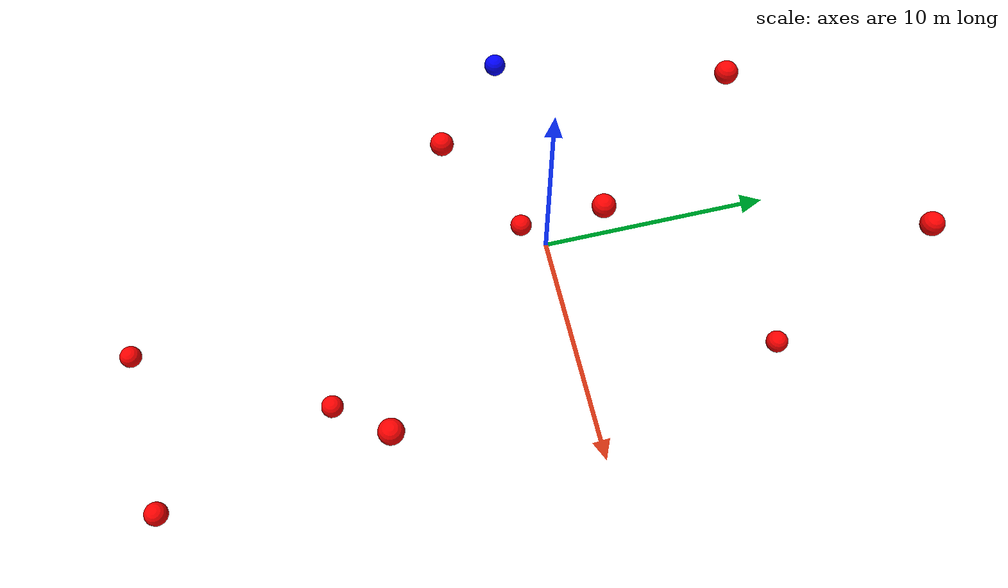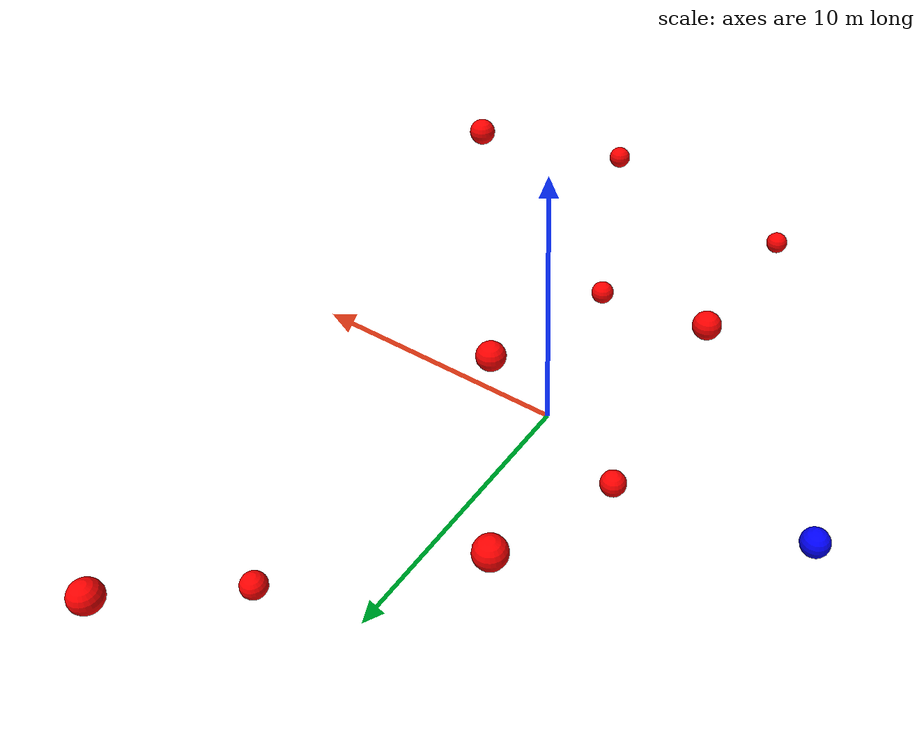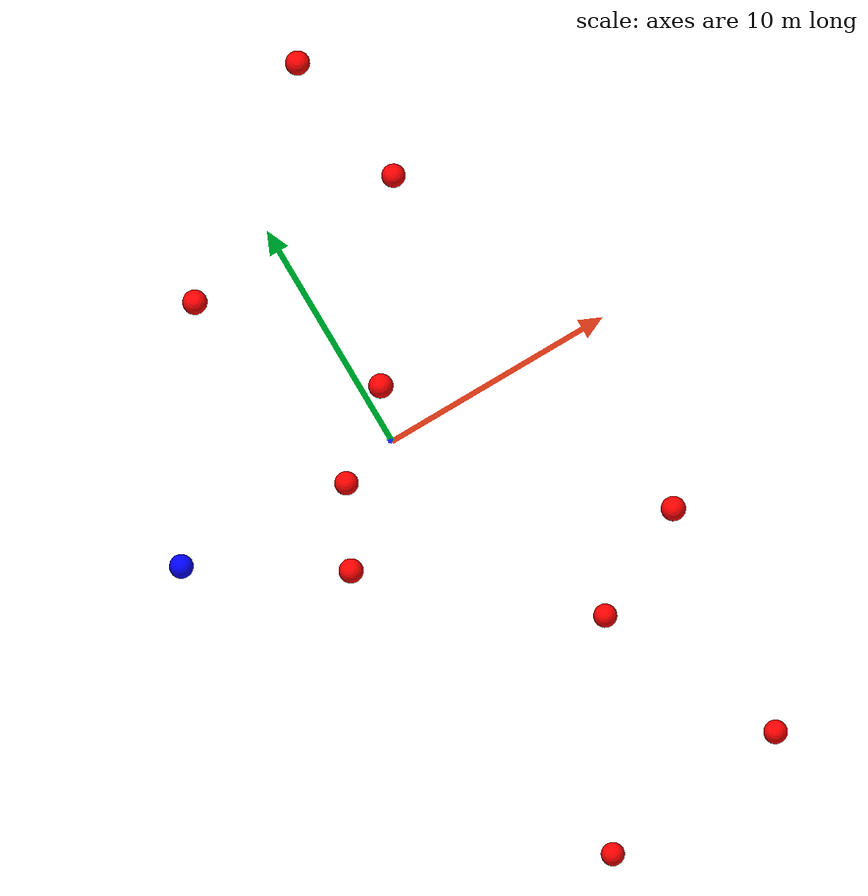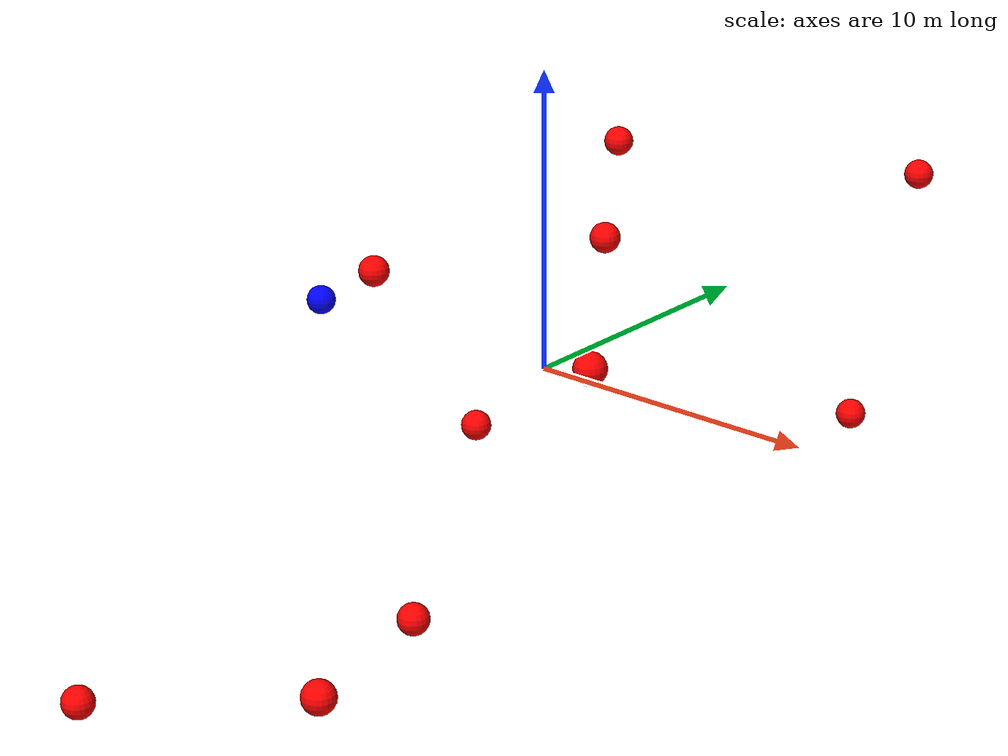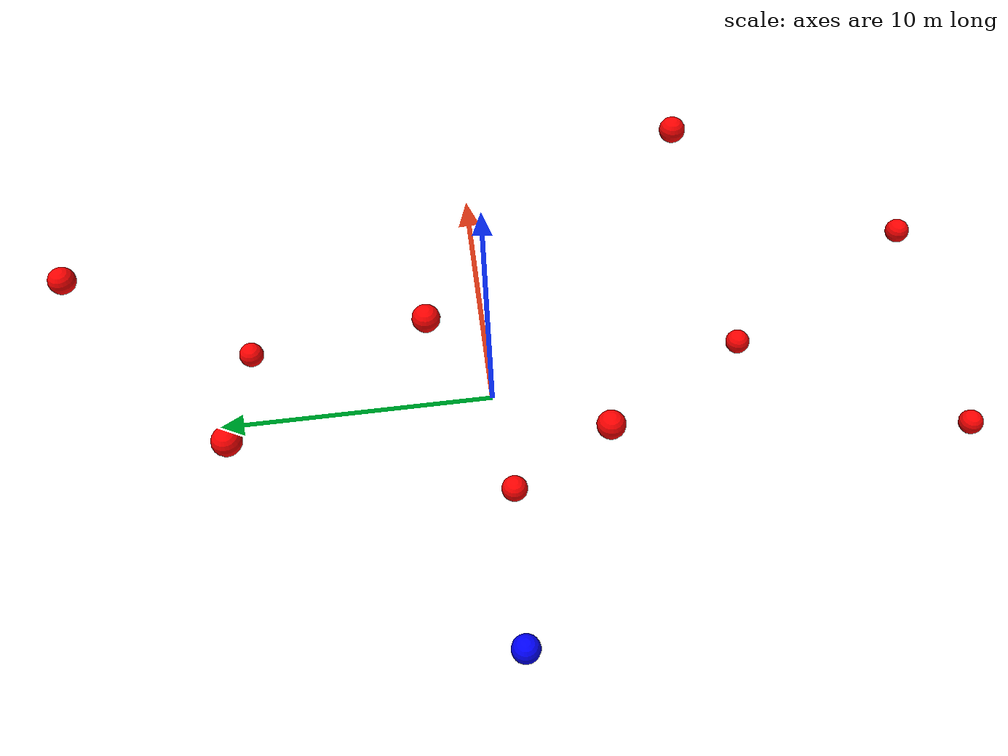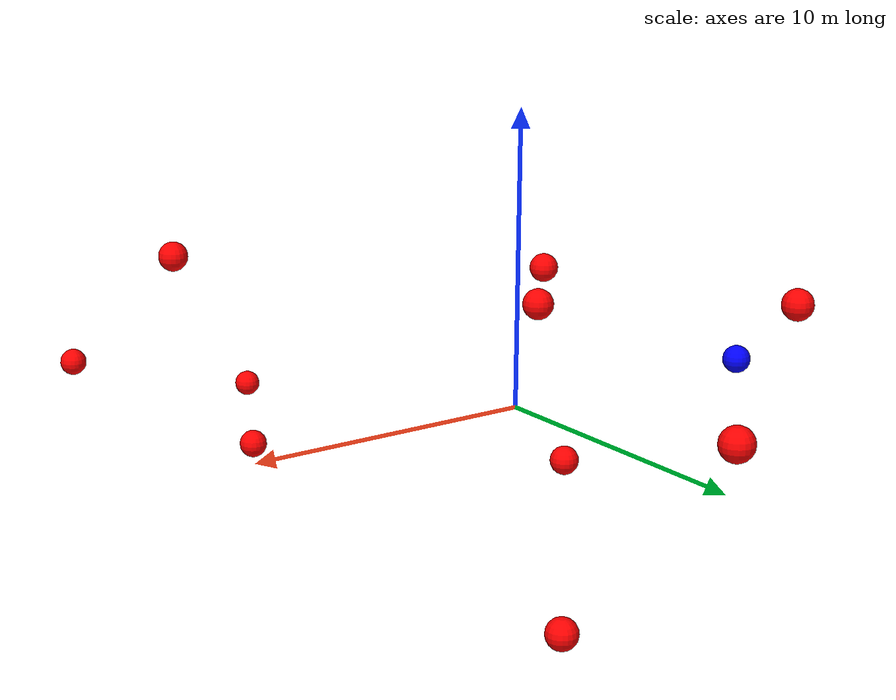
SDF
<?xml version="1.0" ?>
<sdf version="1.8">
    <world name="3d_world">
        <physics name="1ms" type="ode">
            <max_step_size>0.001</max_step_size>
            <real_time_factor>1.0</real_time_factor>
            <real_time_update_rate>1000.0</real_time_update_rate>
        </physics>
        <gravity>0 0 0</gravity>

        <plugin
            filename="gz-sim-physics-system"
            name="gz::sim::v8::systems::Physics">
        </plugin>
        <plugin
            filename="libignition-gazebo-user-commands-system.so"
            name="ignition::gazebo::systems::UserCommands">
        </plugin>
        <plugin
            filename="gz-sim-scene-broadcaster-system"
            name="gz::sim::systems::SceneBroadcaster">
        </plugin>
        <plugin
            filename="gz-sim-sensors-system"
            name="gz::sim::systems::Sensors">
            <render_engine>ogre2</render_engine>
        </plugin>

        <light type="directional" name="sun">
            <cast_shadows>true</cast_shadows>
            <pose>0 0 10 0 0 0</pose>
            <diffuse>0.8 0.8 0.8 1</diffuse>
            <specular>0.2 0.2 0.2 1</specular>
            <attenuation>
                <range>1000</range>
                <constant>0.9</constant>
                <linear>0.01</linear>
                <quadratic>0.001</quadratic>
            </attenuation>
            <direction>-0.5 0.1 -0.9</direction>
        </light>

        <!-- AGENTE -->
        <model name='agente' canonical_link='chassis'>
            <pose relative_to='world'>-10.0 0 0.0 0 0 0</pose>
            <link name='chassis'>
                <pose relative_to='__model__'>0.0 0 0.0 0 0 0</pose>
                <inertial>
                    <mass>1.14395</mass>
                    <inertia>
                        <ixx>0.095329</ixx>
                        <ixy>0</ixy>
                        <ixz>0</ixz>
                        <iyy>0.381317</iyy>
                        <iyz>0</iyz>
                        <izz>0.476646</izz>
                    </inertia>
                </inertial>
                <visual name='visual'>
                    <geometry>
                        <sphere>
                            <radius>0.5</radius>
                        </sphere>
                    </geometry>
                    <material>
                        <ambient>0.0 0.0 1.0 1</ambient>
                        <diffuse>0.0 0.0 1.0 1</diffuse>
                        <specular>0.0 0.0 1.0 1</specular>
                    </material>
                </visual>
                <collision name='collision'>
                    <geometry>
                        <sphere>
                            <radius>0.5</radius>
                        </sphere>
                    </geometry>
                </collision>
                <enable_gravity>false</enable_gravity>
            </link>

            <link name='lidar_link'>
                <pose relative_to='chassis'>0.0 0 0.1 0 0 0</pose>
                <inertial>
                    <mass>0.1</mass>
                    <inertia>
                        <ixx>0.000166667</ixx>
                        <iyy>0.000166667</iyy>
                        <izz>0.000166667</izz>
                    </inertia>
                </inertial>
                <collision name='collision'>
                    <geometry>
                        <cylinder>
                            <radius>0.05</radius>
                            <length>0.1</length>
                        </cylinder>
                    </geometry>
                </collision>
                <visual name='visual'>
                    <geometry>
                        <cylinder>
                            <radius>0.05</radius>
                            <length>0.1</length>
                        </cylinder>
                    </geometry>
                    <material>
                        <ambient>0.0 1.0 0.0 1</ambient>
                        <diffuse>0.0 1.0 0.0 1</diffuse>
                        <specular>0.0 1.0 0.0 1</specular>
                    </material>
                </visual>
                <sensor name="lidar" type="gpu_lidar">
                    <topic>scan</topic>
                    <update_rate>10</update_rate>
                    <lidar>
                        <scan>
                            <horizontal>
                                <samples>5000</samples>
                                <resolution>1</resolution>
                                <min_angle>-3.14159</min_angle>
                                <max_angle>3.14159</max_angle>
                            </horizontal>
                        </scan>
                        <range>
                            <min>0.1</min>
                            <max>10.0</max>
                            <resolution>0.01</resolution>
                        </range>
                    </lidar>
                    <visualize>true</visualize>
                    <always_on>true</always_on>
                    <update_rate>10</update_rate>
                    <pose_frame>lidar</pose_frame>
                </sensor>
                <enable_gravity>false</enable_gravity>
            </link>

            <joint name="lidar_joint" type="fixed">
                <parent>chassis</parent>
                <child>lidar_link</child>
            </joint>

            <plugin
                filename="ignition-gazebo-joint-state-publisher-system"
                name="ignition::gazebo::systems::JointStatePublisher">
            </plugin>
            <plugin
                filename="ignition-gazebo-odometry-publisher-system"
                name="ignition::gazebo::systems::OdometryPublisher">
                <dimensions>3</dimensions>
            </plugin>
            <plugin
                filename="ignition-gazebo-velocity-control-system"
                name="ignition::gazebo::systems::VelocityControl">
                <initial_linear>0.0 0 0</initial_linear>
                <initial_angular>0 0 0.0</initial_angular>
            </plugin>
            <plugin
                filename="libignition-gazebo-pose-publisher-system.so"
                name="ignition::gazebo::systems::PosePublisher">
                <topic>/agente/pose</topic>
                <frame_id>agente</frame_id>
                <update_rate>30</update_rate>
            </plugin>
        </model>

        <!-- OBSTACLE 1 -->
        <model name='obstacle_1' canonical_link='obstacle'>
            <static>false</static>
            <pose relative_to='world'>5.64 9.53 -3.14 0 0 0</pose>
            <link name='obstacle'>
                <pose relative_to='__model__'>0.0 0 0.0 0 0 0</pose>
                <visual name='visual'>
                    <geometry>
                        <sphere>
                            <radius>0.50</radius>
                        </sphere>
                    </geometry>
                    <material>
                        <ambient>1.0 0.0 0.0 1</ambient>
                        <diffuse>1.0 0.0 0.0 1</diffuse>
                        <specular>1.0 0.0 0.0 1</specular>
                    </material>
                </visual>
                <collision name='collision'>
                    <geometry>
                        <sphere>
                            <radius>0.50</radius>
                        </sphere>
                    </geometry>
                </collision>
                <enable_gravity>false</enable_gravity>
            </link>

            <plugin
                filename="ignition-gazebo-velocity-control-system"
                name="ignition::gazebo::systems::VelocityControl">
                <initial_linear>-0.35 -1.74 0.57</initial_linear>
                <initial_angular>0 0 0</initial_angular>
            </plugin>

            <plugin
                filename="ignition-gazebo-odometry-publisher-system"
                name="ignition::gazebo::systems::OdometryPublisher">
                <dimensions>3</dimensions>
            </plugin>
        </model>

        <!-- OBSTACLE 2 -->
        <model name='obstacle_2' canonical_link='obstacle'>
            <static>false</static>
            <pose relative_to='world'>-3.86 8.71 4.86 0 0 0</pose>
            <link name='obstacle'>
                <pose relative_to='__model__'>0.0 0 0.0 0 0 0</pose>
                <visual name='visual'>
                    <geometry>
                        <sphere>
                            <radius>0.50</radius>
                        </sphere>
                    </geometry>
                    <material>
                        <ambient>1.0 0.0 0.0 1</ambient>
                        <diffuse>1.0 0.0 0.0 1</diffuse>
                        <specular>1.0 0.0 0.0 1</specular>
                    </material>
                </visual>
                <collision name='collision'>
                    <geometry>
                        <sphere>
                            <radius>0.50</radius>
                        </sphere>
                    </geometry>
                </collision>
                <enable_gravity>false</enable_gravity>
            </link>

            <plugin
                filename="ignition-gazebo-velocity-control-system"
                name="ignition::gazebo::systems::VelocityControl">
                <initial_linear>0.09 -1.74 -0.97</initial_linear>
                <initial_angular>0 0 0</initial_angular>
            </plugin>

            <plugin
                filename="ignition-gazebo-odometry-publisher-system"
                name="ignition::gazebo::systems::OdometryPublisher">
                <dimensions>3</dimensions>
            </plugin>
        </model>

        <!-- OBSTACLE 3 -->
        <model name='obstacle_3' canonical_link='obstacle'>
            <static>false</static>
            <pose relative_to='world'>3.91 -10.70 -3.57 0 0 0</pose>
            <link name='obstacle'>
                <pose relative_to='__model__'>0.0 0 0.0 0 0 0</pose>
                <visual name='visual'>
                    <geometry>
                        <sphere>
                            <radius>0.50</radius>
                        </sphere>
                    </geometry>
                    <material>
                        <ambient>1.0 0.0 0.0 1</ambient>
                        <diffuse>1.0 0.0 0.0 1</diffuse>
                        <specular>1.0 0.0 0.0 1</specular>
                    </material>
                </visual>
                <collision name='collision'>
                    <geometry>
                        <sphere>
                            <radius>0.50</radius>
                        </sphere>
                    </geometry>
                </collision>
                <enable_gravity>false</enable_gravity>
            </link>

            <plugin
                filename="ignition-gazebo-velocity-control-system"
                name="ignition::gazebo::systems::VelocityControl">
                <initial_linear>-1.21 1.51 0.50</initial_linear>
                <initial_angular>0 0 0</initial_angular>
            </plugin>

            <plugin
                filename="ignition-gazebo-odometry-publisher-system"
                name="ignition::gazebo::systems::OdometryPublisher">
                <dimensions>3</dimensions>
            </plugin>
        </model>

        <!-- OBSTACLE 4 -->
        <model name='obstacle_4' canonical_link='obstacle'>
            <static>false</static>
            <pose relative_to='world'>-0.89 -19.47 -4.31 0 0 0</pose>
            <link name='obstacle'>
                <pose relative_to='__model__'>0.0 0 0.0 0 0 0</pose>
                <visual name='visual'>
                    <geometry>
                        <sphere>
                            <radius>0.50</radius>
                        </sphere>
                    </geometry>
                    <material>
                        <ambient>1.0 0.0 0.0 1</ambient>
                        <diffuse>1.0 0.0 0.0 1</diffuse>
                        <specular>1.0 0.0 0.0 1</specular>
                    </material>
                </visual>
                <collision name='collision'>
                    <geometry>
                        <sphere>
                            <radius>0.50</radius>
                        </sphere>
                    </geometry>
                </collision>
                <enable_gravity>false</enable_gravity>
            </link>

            <plugin
                filename="ignition-gazebo-velocity-control-system"
                name="ignition::gazebo::systems::VelocityControl">
                <initial_linear>-0.04 1.95 0.43</initial_linear>
                <initial_angular>0 0 0</initial_angular>
            </plugin>

            <plugin
                filename="ignition-gazebo-odometry-publisher-system"
                name="ignition::gazebo::systems::OdometryPublisher">
                <dimensions>3</dimensions>
            </plugin>
        </model>

        <!-- OBSTACLE 5 -->
        <model name='obstacle_5' canonical_link='obstacle'>
            <static>false</static>
            <pose relative_to='world'>4.52 14.92 3.83 0 0 0</pose>
            <link name='obstacle'>
                <pose relative_to='__model__'>0.0 0 0.0 0 0 0</pose>
                <visual name='visual'>
                    <geometry>
                        <sphere>
                            <radius>0.50</radius>
                        </sphere>
                    </geometry>
                    <material>
                        <ambient>1.0 0.0 0.0 1</ambient>
                        <diffuse>1.0 0.0 0.0 1</diffuse>
                        <specular>1.0 0.0 0.0 1</specular>
                    </material>
                </visual>
                <collision name='collision'>
                    <geometry>
                        <sphere>
                            <radius>0.50</radius>
                        </sphere>
                    </geometry>
                </collision>
                <enable_gravity>false</enable_gravity>
            </link>

            <plugin
                filename="ignition-gazebo-velocity-control-system"
                name="ignition::gazebo::systems::VelocityControl">
                <initial_linear>-0.74 -1.80 -0.46</initial_linear>
                <initial_angular>0 0 0</initial_angular>
            </plugin>

            <plugin
                filename="ignition-gazebo-odometry-publisher-system"
                name="ignition::gazebo::systems::OdometryPublisher">
                <dimensions>3</dimensions>
            </plugin>
        </model>

        <!-- OBSTACLE 6 -->
        <model name='obstacle_6' canonical_link='obstacle'>
            <static>false</static>
            <pose relative_to='world'>-2.53 -0.48 -2.51 0 0 0</pose>
            <link name='obstacle'>
                <pose relative_to='__model__'>0.0 0 0.0 0 0 0</pose>
                <visual name='visual'>
                    <geometry>
                        <sphere>
                            <radius>0.50</radius>
                        </sphere>
                    </geometry>
                    <material>
                        <ambient>1.0 0.0 0.0 1</ambient>
                        <diffuse>1.0 0.0 0.0 1</diffuse>
                        <specular>1.0 0.0 0.0 1</specular>
                    </material>
                </visual>
                <collision name='collision'>
                    <geometry>
                        <sphere>
                            <radius>0.50</radius>
                        </sphere>
                    </geometry>
                </collision>
                <enable_gravity>false</enable_gravity>
            </link>

            <plugin
                filename="ignition-gazebo-velocity-control-system"
                name="ignition::gazebo::systems::VelocityControl">
                <initial_linear>1.00 0.10 0.51</initial_linear>
                <initial_angular>0 0 0</initial_angular>
            </plugin>

            <plugin
                filename="ignition-gazebo-odometry-publisher-system"
                name="ignition::gazebo::systems::OdometryPublisher">
                <dimensions>3</dimensions>
            </plugin>
        </model>

        <!-- OBSTACLE 7 -->
        <model name='obstacle_7' canonical_link='obstacle'>
            <static>false</static>
            <pose relative_to='world'>-4.00 -3.67 3.47 0 0 0</pose>
            <link name='obstacle'>
                <pose relative_to='__model__'>0.0 0 0.0 0 0 0</pose>
                <visual name='visual'>
                    <geometry>
                        <sphere>
                            <radius>0.50</radius>
                        </sphere>
                    </geometry>
                    <material>
                        <ambient>1.0 0.0 0.0 1</ambient>
                        <diffuse>1.0 0.0 0.0 1</diffuse>
                        <specular>1.0 0.0 0.0 1</specular>
                    </material>
                </visual>
                <collision name='collision'>
                    <geometry>
                        <sphere>
                            <radius>0.50</radius>
                        </sphere>
                    </geometry>
                </collision>
                <enable_gravity>false</enable_gravity>
            </link>

            <plugin
                filename="ignition-gazebo-velocity-control-system"
                name="ignition::gazebo::systems::VelocityControl">
                <initial_linear>0.87 1.00 -0.94</initial_linear>
                <initial_angular>0 0 0</initial_angular>
            </plugin>

            <plugin
                filename="ignition-gazebo-odometry-publisher-system"
                name="ignition::gazebo::systems::OdometryPublisher">
                <dimensions>3</dimensions>
            </plugin>
        </model>

        <!-- OBSTACLE 8 -->
        <model name='obstacle_8' canonical_link='obstacle'>
            <static>false</static>
            <pose relative_to='world'>7.50 -18.32 -1.70 0 0 0</pose>
            <link name='obstacle'>
                <pose relative_to='__model__'>0.0 0 0.0 0 0 0</pose>
                <visual name='visual'>
                    <geometry>
                        <sphere>
                            <radius>0.50</radius>
                        </sphere>
                    </geometry>
                    <material>
                        <ambient>1.0 0.0 0.0 1</ambient>
                        <diffuse>1.0 0.0 0.0 1</diffuse>
                        <specular>1.0 0.0 0.0 1</specular>
                    </material>
                </visual>
                <collision name='collision'>
                    <geometry>
                        <sphere>
                            <radius>0.50</radius>
                        </sphere>
                    </geometry>
                </collision>
                <enable_gravity>false</enable_gravity>
            </link>

            <plugin
                filename="ignition-gazebo-velocity-control-system"
                name="ignition::gazebo::systems::VelocityControl">
                <initial_linear>-1.08 1.68 0.16</initial_linear>
                <initial_angular>0 0 0</initial_angular>
            </plugin>

            <plugin
                filename="ignition-gazebo-odometry-publisher-system"
                name="ignition::gazebo::systems::OdometryPublisher">
                <dimensions>3</dimensions>
            </plugin>
        </model>

        <!-- OBSTACLE 9 -->
        <model name='obstacle_9' canonical_link='obstacle'>
            <static>false</static>
            <pose relative_to='world'>8.36 -8.07 4.66 0 0 0</pose>
            <link name='obstacle'>
                <pose relative_to='__model__'>0.0 0 0.0 0 0 0</pose>
                <visual name='visual'>
                    <geometry>
                        <sphere>
                            <radius>0.50</radius>
                        </sphere>
                    </geometry>
                    <material>
                        <ambient>1.0 0.0 0.0 1</ambient>
                        <diffuse>1.0 0.0 0.0 1</diffuse>
                        <specular>1.0 0.0 0.0 1</specular>
                    </material>
                </visual>
                <collision name='collision'>
                    <geometry>
                        <sphere>
                            <radius>0.50</radius>
                        </sphere>
                    </geometry>
                </collision>
                <enable_gravity>false</enable_gravity>
            </link>

            <plugin
                filename="ignition-gazebo-velocity-control-system"
                name="ignition::gazebo::systems::VelocityControl">
                <initial_linear>-1.23 1.37 -0.79</initial_linear>
                <initial_angular>0 0 0</initial_angular>
            </plugin>

            <plugin
                filename="ignition-gazebo-odometry-publisher-system"
                name="ignition::gazebo::systems::OdometryPublisher">
                <dimensions>3</dimensions>
            </plugin>
        </model>

        <!-- OBSTACLE 10 -->
        <model name='obstacle_10' canonical_link='obstacle'>
            <static>false</static>
            <pose relative_to='world'>0.81 2.09 4.12 0 0 0</pose>
            <link name='obstacle'>
                <pose relative_to='__model__'>0.0 0 0.0 0 0 0</pose>
                <visual name='visual'>
                    <geometry>
                        <sphere>
                            <radius>0.50</radius>
                        </sphere>
                    </geometry>
                    <material>
                        <ambient>1.0 0.0 0.0 1</ambient>
                        <diffuse>1.0 0.0 0.0 1</diffuse>
                        <specular>1.0 0.0 0.0 1</specular>
                    </material>
                </visual>
                <collision name='collision'>
                    <geometry>
                        <sphere>
                            <radius>0.50</radius>
                        </sphere>
                    </geometry>
                </collision>
                <enable_gravity>false</enable_gravity>
            </link>

            <plugin
                filename="ignition-gazebo-velocity-control-system"
                name="ignition::gazebo::systems::VelocityControl">
                <initial_linear>-0.23 -0.53 -1.04</initial_linear>
                <initial_angular>0 0 0</initial_angular>
            </plugin>

            <plugin
                filename="ignition-gazebo-odometry-publisher-system"
                name="ignition::gazebo::systems::OdometryPublisher">
                <dimensions>3</dimensions>
            </plugin>
        </model>

    </world>
</sdf>
